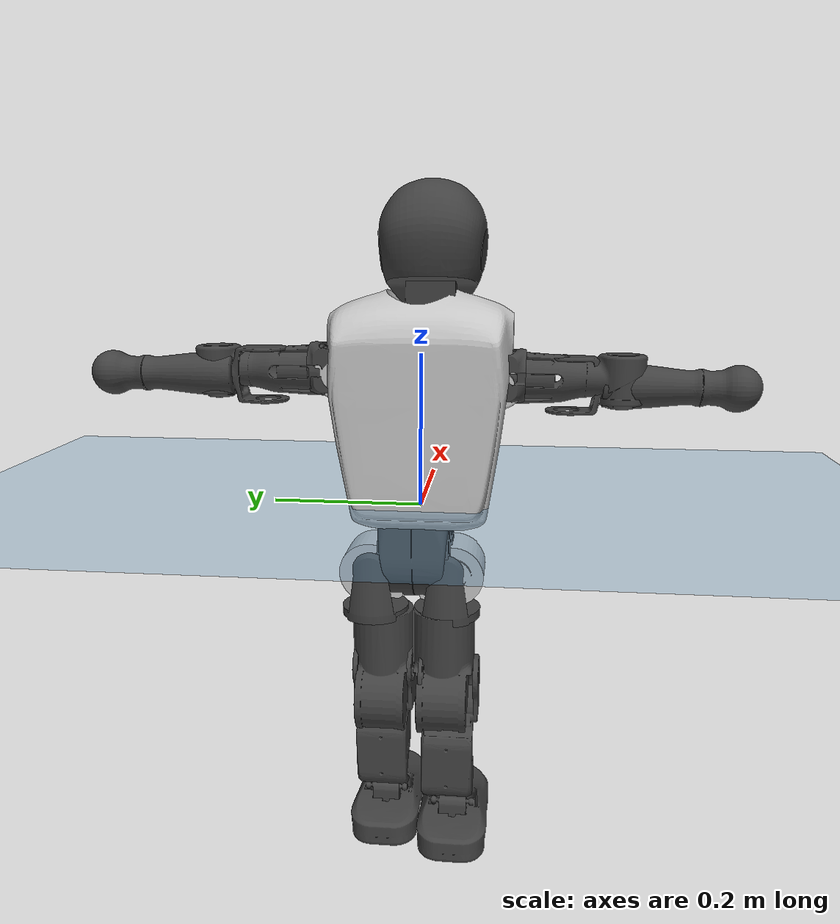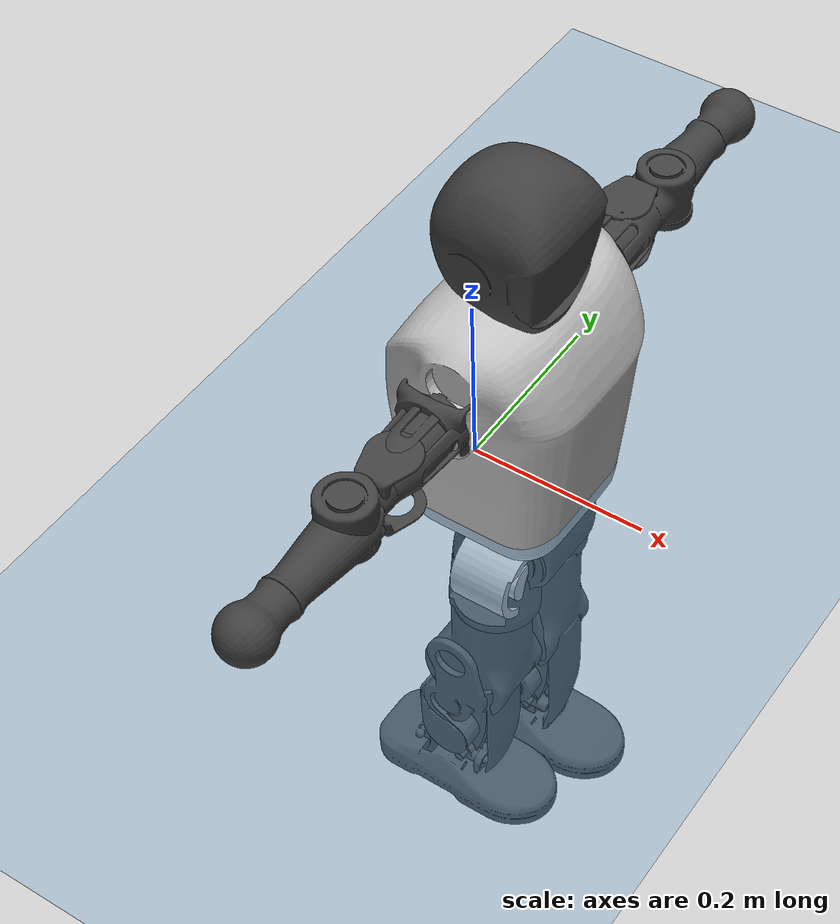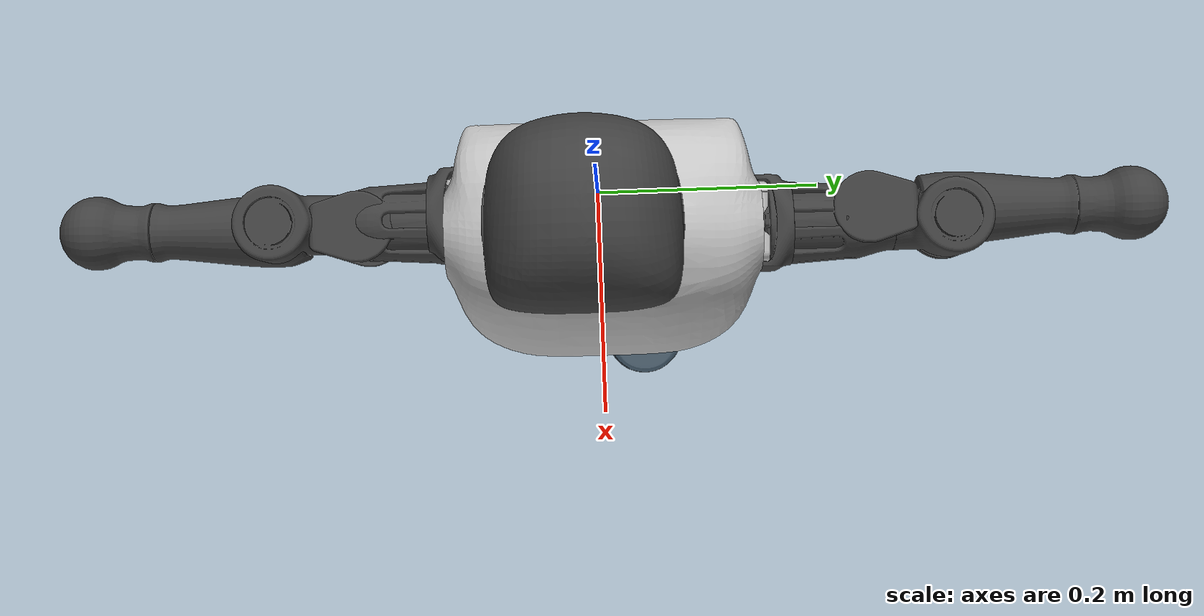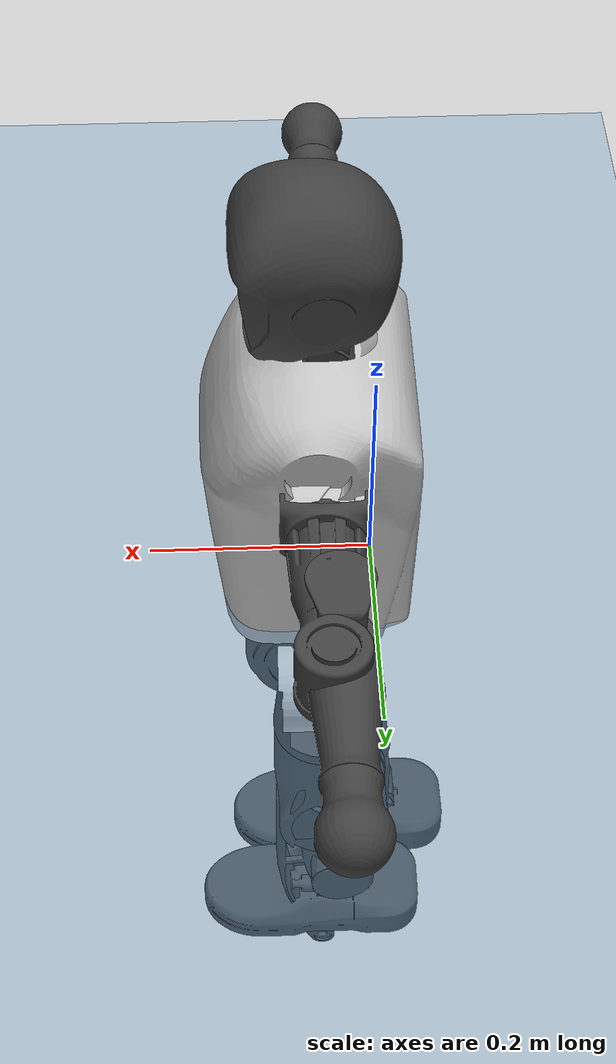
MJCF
<mujoco model="T1">
  <compiler angle="radian" assetdir="assets" balanceinertia="true" inertiafromgeom="false"/>

  <option timestep="0.005" density="1.2" viscosity="2e-05"/>

  <size nkey="1"/>

  <visual>
    <quality shadowsize="8192"/>
    <map shadowclip="0.5"/>
  </visual>

  <default>
    <default class="/">
      <joint armature="0.01" damping="0.01" frictionloss="0.1"/>
      <geom contype="0" conaffinity="0" group="1" solref="-1000 -80"/>
      <site size="0.01 0.005 0.005" group="5"/>
      <general forcelimited="true" biastype="affine" gainprm="25" biasprm="0 -25 -0.6"/>
      <default class="t1">
        <geom rgba="0.25 0.25 0.25 1"/>
        <default class="visual">
          <geom type="mesh" group="2"/>
        </default>
        <default class="collision">
          <geom group="3"/>
        </default>
        <default class="foot">
          <geom size="0.1115 0.05 0.015" type="box" condim="6" group="4" priority="1" solimp="0.015 1 0.015"/>
        </default>
        <default class="reward_collision_sphere">
          <geom group="5" rgba="1 0 0 1"/>
        </default>
      </default>
    </default>
  </default>

  <asset>
    <texture type="skybox" colorspace="auto" name="//unnamed_texture_0" builtin="gradient" rgb1="0.95 0.95 0.95" rgb2="0.95 0.95 0.95" width="100" height="600"/>
    <texture type="2d" colorspace="auto" name="texplane" builtin="checker" rgb1="0.345 0.575 0.748" rgb2="0.345 0.575 0.748" markrgb="1 1 1" width="512" height="512"/>
    <material name="MatPlane" class="/" texture="texplane" texuniform="true" texrepeat="2 2" specular="0.9"/>
    <mesh name="Trunk" class="/" file="Trunk.stl"/>
    <mesh name="H1" class="/" file="H1.stl"/>
    <mesh name="H2" class="/" file="H2.stl"/>
    <mesh name="AL1" class="/" file="AL1.stl"/>
    <mesh name="AL2" class="/" file="AL2.stl"/>
    <mesh name="AL3" class="/" file="AL3.stl"/>
    <mesh name="left_hand_link" class="/" file="left_hand_link.stl"/>
    <mesh name="AR1" class="/" file="AR1.stl"/>
    <mesh name="AR2" class="/" file="AR2.stl"/>
    <mesh name="AR3" class="/" file="AR3.stl"/>
    <mesh name="right_hand_link" class="/" file="right_hand_link.stl"/>
    <mesh name="Waist" class="/" file="Waist.stl"/>
    <mesh name="Hip_Pitch_Left" class="/" file="Hip_Pitch_Left.stl"/>
    <mesh name="Hip_Roll_Left" class="/" file="Hip_Roll_Left.stl"/>
    <mesh name="Hip_Yaw_Left" class="/" file="Hip_Yaw_Left.stl"/>
    <mesh name="Shank_Left" class="/" file="Shank_Left.stl"/>
    <mesh name="Ankle_Cross_Left" class="/" file="Ankle_Cross_Left.stl"/>
    <mesh name="left_foot_link" class="/" file="left_foot_link.stl"/>
    <mesh name="Hip_Pitch_Right" class="/" file="Hip_Pitch_Right.stl"/>
    <mesh name="Hip_Roll_Right" class="/" file="Hip_Roll_Right.stl"/>
    <mesh name="Hip_Yaw_Right" class="/" file="Hip_Yaw_Right.stl"/>
    <mesh name="Shank_Right" class="/" file="Shank_Right.stl"/>
    <mesh name="Ankle_Cross_Right" class="/" file="Ankle_Cross_Right.stl"/>
    <mesh name="right_foot_link" class="/" file="right_foot_link.stl"/>
  </asset>

  <worldbody>
    <geom name="floor" class="/" size="100 100 0.125" type="plane" group="0" material="MatPlane"/>
    <light name="toplight_shadow" class="/" pos="0 0 5" dir="0.0990148 0.0990148 -0.990148" type="directional" ambient="0.04 0.04 0.04" diffuse="0.55 0.55 0.55" specular="0.12 0.12 0.12"/>
    <light name="toplight_fill" class="/" pos="0 0 5" dir="0.0990148 0.0990148 -0.990148" type="directional" castshadow="false" ambient="0.04 0.04 0.04" diffuse="0.3 0.3 0.3" specular="0.08 0.08 0.08"/>
    <body name="trunk" childclass="t1" pos="-0.00169768 0.004017 -0.00174047" quat="0.999988 -0.00230568 -0.00291078 -0.0031105">
      <inertial pos="0.05096 0.00752884 0.0806533" quat="0.999957 -0.00520784 -0.00588055 0.00494229" mass="4.45504" diaginertia="0.0302483 0.00505954 0.0136173"/>
      <joint name="//unnamed_joint_0" type="free" armature="0" damping="0" frictionloss="0"/>
      <geom name="//unnamed_geom_1" class="visual" rgba="0.76 0.76 0.76 1" mesh="Trunk"/>
      <geom name="//unnamed_geom_2" class="collision" size="0.0525734 0.0700979 0.105147" pos="0.04787 0 0.0879271" type="box"/>
      <geom name="//unnamed_geom_3" class="reward_collision_sphere" size="0.0806125" pos="0.04787 0 0.0732726"/>
      <geom name="//unnamed_geom_4" class="reward_collision_sphere" size="0.0105147" pos="0.04787 0.048652 0"/>
      <geom name="//unnamed_geom_5" class="reward_collision_sphere" size="0.0105147" pos="0.04787 -0.048652 0"/>
      <geom name="//unnamed_geom_6" class="reward_collision_sphere" size="0.0105147" pos="0.04787 0.0612443 0.131891"/>
      <geom name="//unnamed_geom_7" class="reward_collision_sphere" size="0.0105147" pos="0.04787 -0.0612443 0.131891"/>
      <site name="imu" pos="-0.0310448 -0.00256881 0.031194" size="0.00700979"/>
      <camera name="track" pos="0 -1.14475 0" quat="0.707107 0.707107 0 0" mode="trackcom"/>
      <camera name="ego_camera" pos="0.0973356 0 0.307745" quat="-0.5 -0.5 0.5 0.5"/>
      <body name="H1" pos="0.0518593 -0.00377645 0.177141" quat="0.999999 0.00074008 0.000121612 0.00124335">
        <inertial pos="0.00398341 -0.0113329 0.0385354" quat="0.736691 -0.0226787 -0.0202908 0.675545" mass="0.160646" diaginertia="8.2521e-05 1.52765e-05 3.89323e-05"/>
        <joint name="AAHead_yaw" pos="0 0 0" axis="0.00334988 -0.047574 0.998862" range="-1.54513 1.56688" armature="0.00878926" damping="0.00686035" frictionloss="0.0666979"/>
        <geom name="//unnamed_geom_8" class="visual" mesh="H1"/>
        <body name="H2" pos="-0.00637718 -0.00984336 0.0495994" quat="1 0.000135419 6.57418e-05 0.000117337">
          <inertial pos="0.000990672 -0.0083623 0.075019" quat="0.988431 0.105292 -0.0747345 -0.0795778" mass="0.215819" diaginertia="0.000577688 0.000114008 0.000358778"/>
          <joint name="Head_pitch" pos="0 0 0" axis="0.0142524 -0.999896 0.00217329" range="-1.25318 0.351642" armature="0.0104636" damping="0.0067885" frictionloss="0.0290768"/>
          <geom name="//unnamed_geom_9" class="visual" mesh="H2"/>
          <geom name="//unnamed_geom_10" class="collision" size="0.0560783" pos="0.00797833 0 0.0805999"/>
          <geom name="//unnamed_geom_11" class="reward_collision_sphere" size="0.0630881" pos="0.0159567 0 0.0732726"/>
        </body>
      </body>
      <body name="AL1" pos="0.0496626 0.0637604 0.170689" quat="1 8.79971e-05 0.000301597 6.79469e-06">
        <inertial pos="0.00941625 0.0269432 -7.07318e-05" quat="0.50775 0.493204 -0.500791 0.498144" mass="0.178069" diaginertia="0.000448828 7.9176e-05 6.69256e-05"/>
        <joint name="Left_Shoulder_Pitch" pos="0 0 0" axis="0.0467721 0.998725 0.0189919" range="-3.26142 1.30275" armature="0.007043" damping="0.00932713" frictionloss="0.0750977"/>
        <geom name="//unnamed_geom_12" class="visual" rgba="0.76 0.76 0.76 1" mesh="AL1"/>
        <body name="AL2" pos="0.00187655 0.0299806 0.00623962" quat="1 -2.39672e-06 -4.44231e-05 6.35075e-05">
          <inertial pos="-0.0010722 0.0259072 0.0081064" quat="0.511337 0.511662 -0.491827 0.484605" mass="0.0554854" diaginertia="0.000127975 2.10921e-05 3.6701e-05"/>
          <joint name="Left_Shoulder_Roll" pos="0 0 0" axis="-0.999823 0.0187163 -0.0020835" stiffness="0.00265022" range="-1.60594 1.755" armature="0.00618882" damping="0" frictionloss="0.0651256"/>
          <geom name="//unnamed_geom_13" class="visual" mesh="AL2"/>
          <body name="AL3" pos="5.94317e-05 0.0377225 -0.00281083" quat="1 0.00017748 0.000658624 0.000653546">
            <inertial pos="0.0048324 0.0491504 0.000665066" quat="0.717791 0.69459 0.0464099 0.0129022" mass="0.357674" diaginertia="0.00395355 0.000788656 0.000149972"/>
            <joint name="Left_Elbow_Pitch" pos="0 0 0" axis="-0.00377836 -0.999981 -0.00484405" stiffness="0.000342373" range="-2.23731 2.25945" armature="0.0072568" damping="0" frictionloss="0.0329996"/>
            <geom name="//unnamed_geom_14" class="visual" mesh="AL3"/>
            <geom name="//unnamed_geom_15" class="collision" size="0.0210294 0.0525734" pos="0 0.0286189 0" quat="0.707105 0.707108 0 0" type="cylinder"/>
            <geom name="//unnamed_geom_16" class="reward_collision_sphere" size="0.0252352"/>
            <body name="left_hand_link" pos="-0.00865676 0.0785722 -0.00557013" quat="1 5.4441e-05 -1.92685e-05 -2.02484e-05">
              <inertial pos="-0.0088664 0.0689089 0.00876306" quat="0.711423 0.702718 -0.00195992 -0.00778696" mass="0.112276" diaginertia="0.00265373 0.000471297 4.15072e-05"/>
              <joint name="Left_Elbow_Yaw" pos="0 0 0" axis="0.000492387 -0.00579879 0.999983" stiffness="0.0159432" range="-2.39281 0.0113431" armature="0.00483384" damping="0" frictionloss="0.0711527"/>
              <geom name="//unnamed_geom_17" class="visual" mesh="left_hand_link"/>
              <geom name="//unnamed_geom_18" class="collision" size="0.0210294 0.0613356" pos="0 0.074409 0" quat="0.707105 0.707108 0 0" type="cylinder"/>
              <geom name="//unnamed_geom_19" class="reward_collision_sphere" size="0.0350489"/>
              <geom name="//unnamed_geom_20" class="reward_collision_sphere" size="0.0245343" pos="0 0.0629615 0"/>
              <geom name="//unnamed_geom_21" class="reward_collision_sphere" size="0.0245343" pos="0 0.123061 0"/>
            </body>
          </body>
        </body>
      </body>
      <body name="AR1" pos="0.0407669 -0.0596421 0.161536" quat="0.999981 0.00462018 0.00391017 0.000980707">
        <inertial pos="-0.000557999 -0.0229311 -0.00315049" quat="0.497589 0.495719 -0.505589 0.501047" mass="0.159844" diaginertia="0.000419792 6.81751e-05 5.52333e-05"/>
        <joint name="Right_Shoulder_Pitch" pos="0 0 0" axis="-0.00263477 -0.999993 0.00260344" stiffness="0.00164697" range="-1.33211 3.32975" armature="0.00766995" damping="0" frictionloss="0.0816625"/>
        <geom name="//unnamed_geom_22" class="visual" rgba="0.76 0.76 0.76 1" mesh="AR1"/>
        <body name="AR2" pos="-0.00339019 -0.0231312 0.0100166" quat="0.999992 0.000419564 0.00329189 -0.00203579">
          <inertial pos="0.0056244 -0.0241924 0.00203608" quat="0.485707 0.498244 -0.513837 0.501809" mass="0.0595497" diaginertia="0.000140657 2.16317e-05 3.95277e-05"/>
          <joint name="Right_Shoulder_Roll" pos="0 0 0" axis="-0.999389 0.0164148 -0.030871" stiffness="0.0275705" range="-1.66785 1.647" armature="0.00689597" damping="0.0434041" frictionloss="0.0672794"/>
          <geom name="//unnamed_geom_23" class="visual" mesh="AR2"/>
          <body name="AR3" pos="0.00495094 -0.0333811 -0.00317606" quat="0.999991 -0.00102527 0.00166557 -0.00389349">
            <inertial pos="-0.0116754 -0.0469382 -0.00274034" quat="0.707754 0.706459 -4.07353e-05 -9.28252e-05" mass="0.340664" diaginertia="0.00354431 0.000700324 0.000119307"/>
            <joint name="Right_Elbow_Pitch" pos="0 0 0" axis="0.0121689 0.99974 0.0192837" range="-2.21984 2.51103" armature="0.00704669" damping="0.0028219" frictionloss="0.0564513"/>
            <geom name="//unnamed_geom_24" class="visual" mesh="AR3"/>
            <geom name="//unnamed_geom_25" class="collision" size="0.0210294 0.0525734" pos="0 -0.0286189 0" quat="0.707105 0.707108 0 0" type="cylinder"/>
            <geom name="//unnamed_geom_26" class="reward_collision_sphere" size="0.0252352"/>
            <body name="right_hand_link" pos="0.00366677 -0.0784291 -0.00873047" quat="0.999992 0.000936522 0.00236242 -0.00299621">
              <inertial pos="-0.0106623 -0.0646474 0.00944523" quat="0.702093 0.712078 0.00138694 -0.00288105" mass="0.126345" diaginertia="0.00345629 0.000610021 4.5473e-05"/>
              <joint name="Right_Elbow_Yaw" pos="0 0 0" axis="-0.0062474 0.00186003 0.999979" range="0.0255391 2.61454" armature="0.007713" damping="0.00296519" frictionloss="0.0724717"/>
              <geom name="//unnamed_geom_27" class="visual" mesh="right_hand_link"/>
              <geom name="//unnamed_geom_28" class="collision" size="0.0210294 0.0613356" pos="0 -0.074409 0" quat="0.707105 0.707108 0 0" type="cylinder"/>
              <geom name="//unnamed_geom_29" class="reward_collision_sphere" size="0.0350489"/>
              <geom name="//unnamed_geom_30" class="reward_collision_sphere" size="0.0245343" pos="0 -0.0629615 0"/>
              <geom name="//unnamed_geom_31" class="reward_collision_sphere" size="0.0245343" pos="0 -0.123061 0"/>
            </body>
          </body>
        </body>
      </body>
      <body name="Waist" pos="0.057601 0.00878497 -0.0887518" quat="0.999998 -0.00203779 0.000757157 -0.000424579">
        <inertial pos="0.00176616 -0.00747889 0.00489564" quat="0.980804 0.0259375 -0.192241 0.0198312" mass="1.0424" diaginertia="0.00188299 0.000367034 0.00116268"/>
        <joint name="Waist" pos="0 0 0" axis="-0.0087289 -0.00733405 0.999935" stiffness="0.0136019" range="-1.5022 1.62637" armature="0.00762986" damping="0.0576148" frictionloss="0.0529142"/>
        <geom name="//unnamed_geom_32" class="visual" mesh="Waist"/>
        <body name="Hip_Pitch_Left" pos="-0.00470717 0.0618474 0.00207608" quat="1 -2.0294e-05 -0.000115026 -0.000499279">
          <inertial pos="0.00385353 -0.00361853 -0.00418381" quat="0.976917 0.212781 0.0185929 -0.00329818" mass="0.373971" diaginertia="0.000613143 9.31987e-05 0.000278743"/>
          <joint name="Left_Hip_Pitch" pos="0 0 0" axis="-0.013739 0.999903 -0.00247435" range="-1.79639 1.39959" armature="0.00753635" damping="0.0385033" frictionloss="0.0762519"/>
          <geom name="//unnamed_geom_33" class="visual" rgba="0.76 0.76 0.76 1" mesh="Hip_Pitch_Left"/>
          <body name="Hip_Roll_Left" pos="-0.00926566 -0.00319395 -0.00924497" quat="1 -0.000160499 -0.000230528 -0.000442037">
            <inertial pos="0.00154819 0.000484904 -0.0313519" quat="0.709703 -0.00409561 -0.00615301 0.704462" mass="0.115473" diaginertia="0.000454524 9.18952e-05 0.000108584"/>
            <joint name="Left_Hip_Roll" pos="0 0 0" axis="-0.999871 0.0012689 -0.0160297" stiffness="0.0449123" range="-1.50836 0.0071705" armature="0.00746405" damping="0.00175486" frictionloss="0.0736934"/>
            <geom name="//unnamed_geom_34" class="visual" mesh="Hip_Roll_Left"/>
            <geom name="//unnamed_geom_35" class="reward_collision_sphere" size="0.0385538"/>
            <body name="Hip_Yaw_Left" pos="0.00246242 -0.0104834 -0.0714981" quat="1 -0.00010404 0.00034381 0.000507539">
              <inertial pos="-0.00117155 -0.00167336 -0.0676761" quat="0.717303 -0.0174825 -0.0564867 0.694248" mass="0.774831" diaginertia="0.00771926 0.00166976 0.000494564"/>
              <joint name="Left_Hip_Yaw" pos="0 0 0" axis="-0.00122472 -0.000400214 -0.999999" range="-1.02296 0.770314" armature="0.00504853" damping="0.0680522" frictionloss="0.0741918"/>
              <geom name="//unnamed_geom_36" class="visual" mesh="Hip_Yaw_Left"/>
              <geom name="//unnamed_geom_37" class="collision" size="0.0350489 0.0560783" type="cylinder"/>
              <body name="Shank_Left" pos="-0.00733378 -0.00144912 -0.0891938" quat="0.999998 0.00169411 -0.000617761 3.63047e-05">
                <inertial pos="-0.00107143 -0.000421897 -0.0830304" quat="0.997497 0.001344 -0.0241032 0.0664568" mass="0.565586" diaginertia="0.0107603 0.00233496 0.000448853"/>
                <joint name="Left_Knee_Pitch" pos="0 0 0" axis="0.000128737 0.999997 0.00258877" range="-0.096048 2.34366" armature="0.0068721" damping="0.00633503" frictionloss="0.0751841"/>
                <geom name="//unnamed_geom_38" class="visual" mesh="Shank_Left"/>
                <geom name="//unnamed_geom_39" class="collision" size="0.0350489 0.0525734" pos="0 0 -0.0879271" type="cylinder"/>
                <geom name="//unnamed_geom_40" class="reward_collision_sphere" size="0.0455636"/>
                <body name="Ankle_Cross_Left" pos="0.00144109 -0.000663963 -0.197802" quat="1 3.35802e-05 0.000176794 -0.000257938">
                  <inertial pos="0.00671762 -0.00969088 -0.00493154" quat="0.447519 0.546961 0.55186 0.442731" mass="0.0276966" diaginertia="9.00243e-06 1.80496e-06 2.48386e-06"/>
                  <joint name="Left_Ankle_Pitch" pos="0 0 0" axis="0.0126314 0.999234 -0.0370449" range="-0.758682 0.339331" armature="0.010154" damping="0" frictionloss="0.0531784"/>
                  <geom name="//unnamed_geom_41" class="visual" mesh="Ankle_Cross_Left"/>
                  <body name="left_foot_link" pos="0.001176 -0.00554453 -0.0172094" quat="0.999986 -0.00378362 0.00238038 -0.00298611">
                    <inertial pos="0.00940413 0.00205119 -0.00415377" quat="0.00850776 0.625683 0.0196363 0.779784" mass="0.246885" diaginertia="0.000804005 0.000142773 0.000409693"/>
                    <joint name="Left_Ankle_Roll" pos="0 0 0" axis="-0.999986 -0.00523875 0.000394827" stiffness="0.0414439" range="-0.259158 0.636321" armature="0.00520437" damping="0" frictionloss="0.103386"/>
                    <geom name="//unnamed_geom_42" class="visual" mesh="left_foot_link"/>
                    <geom name="left_foot" class="foot" size="0.0896278 0.0424087 0.00979004" pos="0.00797833 0 -0.0109909"/>
                    <geom name="//unnamed_geom_44" class="reward_collision_sphere" size="0.0364509" pos="0.00797833 0 -0.0109909"/>
                    <geom name="//unnamed_geom_45" class="reward_collision_sphere" size="0.0210294" pos="0.0757941 -0.0131647 -0.0109909"/>
                    <geom name="//unnamed_geom_46" class="reward_collision_sphere" size="0.0210294" pos="-0.0558483 -0.0131647 -0.0109909"/>
                    <site name="left_foot" class="foot" pos="0.00797833 0 -0.0109909" size="0.00700979"/>
                  </body>
                </body>
              </body>
            </body>
          </body>
        </body>
        <body name="Hip_Pitch_Right" pos="0.00210251 -0.0540811 -0.00162086" quat="0.99999 0.00290727 -0.00267167 0.00185267">
          <inertial pos="-0.0027894 0.011296 -0.0184918" quat="0.973854 -0.226635 0.0132233 -0.00838596" mass="0.351419" diaginertia="0.000551577 8.06065e-05 0.00024075"/>
          <joint name="Right_Hip_Pitch" pos="0 0 0" axis="0.00130987 -0.999992 0.00386259" range="-1.52137 1.81375" armature="0.00460898" damping="0.010297" frictionloss="0.0807861"/>
          <geom name="//unnamed_geom_47" class="visual" rgba="0.76 0.76 0.76 1" mesh="Hip_Pitch_Right"/>
          <body name="Hip_Roll_Right" pos="-0.0102418 0.00833602 -0.00832305" quat="1 4.73915e-05 8.16411e-05 0.000142328">
            <inertial pos="-0.0011465 -0.00258231 -0.0458438" quat="0.708646 -0.013529 -0.008577 0.705383" mass="0.109458" diaginertia="0.000528248 7.97544e-05 0.000100067"/>
            <joint name="Right_Hip_Roll" pos="0 0 0" axis="-0.999888 -0.00108487 -0.014949" range="-0.204615 1.78848" armature="0.00741269" damping="0.0554101" frictionloss="0.106049"/>
            <geom name="//unnamed_geom_48" class="visual" mesh="Hip_Roll_Right"/>
            <geom name="//unnamed_geom_49" class="reward_collision_sphere" size="0.0385538"/>
            <body name="Hip_Yaw_Right" pos="-0.00972757 0.0035677 -0.0652468" quat="0.999995 -0.000385786 0.0025849 0.00180984">
              <inertial pos="-0.00617624 0.00581692 -0.0712826" quat="0.720077 -0.0856303 -0.0498151 0.686786" mass="0.724932" diaginertia="0.00950062 0.00146886 0.000623728"/>
              <joint name="Right_Hip_Yaw" pos="0 0 0" axis="-0.0233136 0.0523446 -0.998357" range="-1.05061 0.964586" armature="0.00988334" damping="0" frictionloss="0.074631"/>
              <geom name="//unnamed_geom_50" class="visual" mesh="Hip_Yaw_Right"/>
              <geom name="//unnamed_geom_51" class="collision" size="0.0350489 0.0560783" type="cylinder"/>
              <body name="Shank_Right" pos="-0.0211146 -0.00905272 -0.095772" quat="0.999997 -0.000317655 0.00249554 -0.000807193">
                <inertial pos="-0.00900331 0.00244262 -0.0905885" quat="0.998898 -0.0308376 0.0162995 -0.0314114" mass="0.663881" diaginertia="0.0106598 0.00218035 0.000400928"/>
                <joint name="Right_Knee_Pitch" pos="0 0 0" axis="-0.0277314 -0.999313 -0.0246057" stiffness="0.0517151" range="-2.36666 -0.119007" armature="0.00709471" damping="0" frictionloss="0.0646753"/>
                <geom name="//unnamed_geom_52" class="visual" mesh="Shank_Right"/>
                <geom name="//unnamed_geom_53" class="collision" size="0.0350489 0.0525734" pos="0 0 -0.0879271" type="cylinder"/>
                <geom name="//unnamed_geom_54" class="reward_collision_sphere" size="0.0455636"/>
                <body name="Ankle_Cross_Right" pos="-0.00161067 -0.00782871 -0.197801" quat="0.999991 0.00274245 0.0024044 0.00217274">
                  <inertial pos="-0.00446473 -0.00746739 -0.00824801" quat="0.441364 0.550744 0.552181 0.443819" mass="0.0255118" diaginertia="1.08007e-05 1.573e-06 2.61248e-06"/>
                  <joint name="Right_Ankle_Pitch" pos="0 0 0" axis="-0.0249587 -0.999518 -0.0184862" range="-0.114155 0.8298" armature="0.00807385" damping="0" frictionloss="0.0683797"/>
                  <geom name="//unnamed_geom_55" class="visual" mesh="Ankle_Cross_Right"/>
                  <body name="right_foot_link" pos="-0.00714043 -0.0020112 -0.0117058" quat="1 0.000543983 0.000734975 0.000378831">
                    <inertial pos="-0.000378903 -0.00747135 -0.00603367" quat="0.00214871 0.617741 -0.019066 0.786147" mass="0.180981" diaginertia="0.000793976 0.00013277 0.000405897"/>
                    <joint name="Right_Ankle_Roll" pos="0 0 0" axis="-0.99999 -0.00334993 -0.00301386" range="-0.443296 0.534603" armature="0.00719755" damping="0" frictionloss="0.107451"/>
                    <geom name="//unnamed_geom_56" class="visual" mesh="right_foot_link"/>
                    <geom name="right_foot" class="foot" size="0.102154 0.0335364 0.010477" pos="0.00797833 0 -0.0109909"/>
                    <geom name="//unnamed_geom_58" class="reward_collision_sphere" size="0.0280391"/>
                    <geom name="//unnamed_geom_59" class="reward_collision_sphere" size="0.0210294" pos="0.00797833 0 -0.0109909"/>
                    <geom name="//unnamed_geom_60" class="reward_collision_sphere" size="0.0210294" pos="0.0757941 0.0131647 -0.0109909"/>
                    <geom name="//unnamed_geom_61" class="reward_collision_sphere" size="0.0210294" pos="-0.0558483 0.0131647 -0.0109909"/>
                    <site name="right_foot" class="foot" pos="0.00797833 0 -0.0109909" size="0.00700979"/>
                  </body>
                </body>
              </body>
            </body>
          </body>
        </body>
      </body>
    </body>
  </worldbody>

  <contact>
    <pair class="/" geom1="floor" geom2="left_foot" name="//unnamed_contact_0"/>
    <pair class="/" geom1="floor" geom2="right_foot" name="//unnamed_contact_1"/>
  </contact>

  <actuator>
    <general name="AAHead_yaw" class="/" joint="AAHead_yaw" forcerange="-5.21601 5.21601" gainprm="22.3139" biasprm="0 -22.3139 -0.371912"/>
    <general name="Head_pitch" class="/" joint="Head_pitch" forcerange="-4.60462 4.60462" gainprm="22.3139" biasprm="0 -22.3139 -0.371912"/>
    <general name="Left_Shoulder_Pitch" class="/" joint="Left_Shoulder_Pitch" forcerange="-18.2201 18.2201" gainprm="22.3139" biasprm="0 -22.3139 -0.371912"/>
    <general name="Left_Shoulder_Roll" class="/" joint="Left_Shoulder_Roll" forcerange="-11.7715 11.7715" gainprm="22.3139" biasprm="0 -22.3139 -0.371912"/>
    <general name="Left_Elbow_Pitch" class="/" joint="Left_Elbow_Pitch" forcerange="-14.4955 14.4955" gainprm="22.3139" biasprm="0 -22.3139 -0.371912"/>
    <general name="Left_Elbow_Yaw" class="/" joint="Left_Elbow_Yaw" forcerange="-12.016 12.016" gainprm="22.3139" biasprm="0 -22.3139 -0.371912"/>
    <general name="Right_Shoulder_Pitch" class="/" joint="Right_Shoulder_Pitch" forcerange="-12.6978 12.6978" gainprm="22.3139" biasprm="0 -22.3139 -0.371912"/>
    <general name="Right_Shoulder_Roll" class="/" joint="Right_Shoulder_Roll" forcerange="-13.4425 13.4425" gainprm="22.3139" biasprm="0 -22.3139 -0.371912"/>
    <general name="Right_Elbow_Pitch" class="/" joint="Right_Elbow_Pitch" forcerange="-14.817 14.817" gainprm="22.3139" biasprm="0 -22.3139 -0.371912"/>
    <general name="Right_Elbow_Yaw" class="/" joint="Right_Elbow_Yaw" forcerange="-14.7552 14.7552" gainprm="22.3139" biasprm="0 -22.3139 -0.371912"/>
    <general name="Waist" class="/" joint="Waist" forcerange="-24.5741 24.5741" gainprm="22.3139" biasprm="0 -22.3139 -0.371912"/>
    <general name="Left_Hip_Pitch" class="/" joint="Left_Hip_Pitch" forcerange="-29.6901 29.6901" gainprm="22.3139" biasprm="0 -22.3139 -0.371912"/>
    <general name="Left_Hip_Roll" class="/" joint="Left_Hip_Roll" forcerange="-24.2835 24.2835" gainprm="22.3139" biasprm="0 -22.3139 -0.371912"/>
    <general name="Left_Hip_Yaw" class="/" joint="Left_Hip_Yaw" forcerange="-24.4117 24.4117" gainprm="22.3139" biasprm="0 -22.3139 -0.371912"/>
    <general name="Left_Knee_Pitch" class="/" joint="Left_Knee_Pitch" forcerange="-37.237 37.237" gainprm="22.3139" biasprm="0 -22.3139 -0.371912"/>
    <general name="Left_Ankle_Pitch" class="/" joint="Left_Ankle_Pitch" forcerange="-8.62168 8.62168" gainprm="22.3139" biasprm="0 -22.3139 -0.371912"/>
    <general name="Left_Ankle_Roll" class="/" joint="Left_Ankle_Roll" forcerange="-14.0591 14.0591" gainprm="22.3139" biasprm="0 -22.3139 -0.371912"/>
    <general name="Right_Hip_Pitch" class="/" joint="Right_Hip_Pitch" forcerange="-33.7078 33.7078" gainprm="22.3139" biasprm="0 -22.3139 -0.371912"/>
    <general name="Right_Hip_Roll" class="/" joint="Right_Hip_Roll" forcerange="-13.8634 13.8634" gainprm="22.3139" biasprm="0 -22.3139 -0.371912"/>
    <general name="Right_Hip_Yaw" class="/" joint="Right_Hip_Yaw" forcerange="-26.541 26.541" gainprm="22.3139" biasprm="0 -22.3139 -0.371912"/>
    <general name="Right_Knee_Pitch" class="/" joint="Right_Knee_Pitch" forcerange="-51.353 51.353" gainprm="22.3139" biasprm="0 -22.3139 -0.371912"/>
    <general name="Right_Ankle_Pitch" class="/" joint="Right_Ankle_Pitch" forcerange="-13.1004 13.1004" gainprm="22.3139" biasprm="0 -22.3139 -0.371912"/>
    <general name="Right_Ankle_Roll" class="/" joint="Right_Ankle_Roll" forcerange="-7.35069 7.35069" gainprm="22.3139" biasprm="0 -22.3139 -0.371912"/>
  </actuator>

  <sensor>
    <gyro site="imu" name="imu_angular_velocity"/>
    <velocimeter site="imu" name="imu_linear_velocity"/>
    <framelinvel objtype="site" objname="left_foot" name="left_foot_global_linear_velocity"/>
    <framelinvel objtype="site" objname="right_foot" name="right_foot_global_linear_velocity"/>
  </sensor>

  <keyframe>
    <key name="home" qpos="0 0 0.6385 1 0 0 0 0 0 0 1.4 0 -0.4 0 -1.4 0 0.4 0 -0.4 0 0 0.8 -0.4 0 0.4 0 0 -0.8 0.4 0"/>
  </keyframe>
</mujoco>
